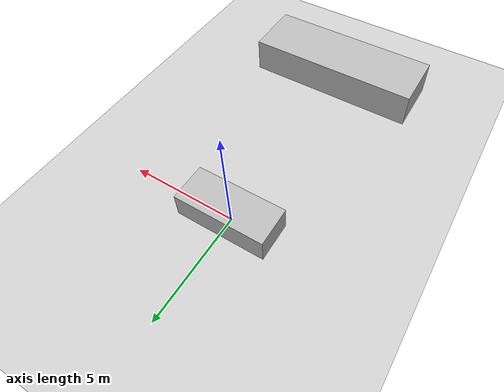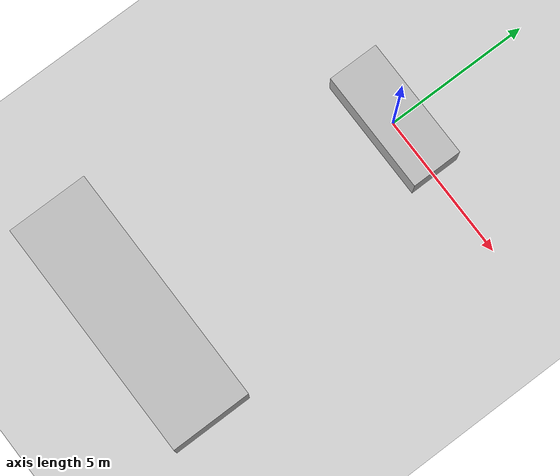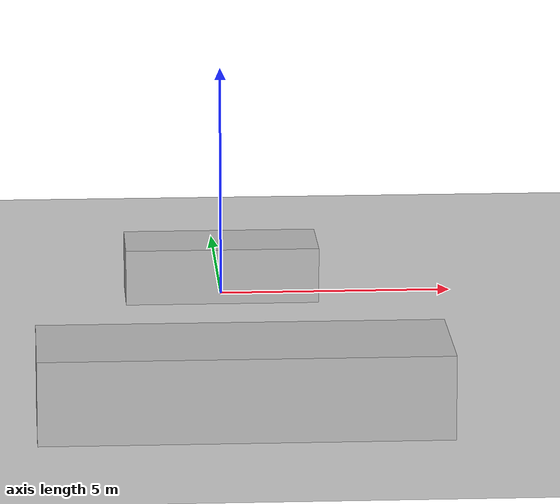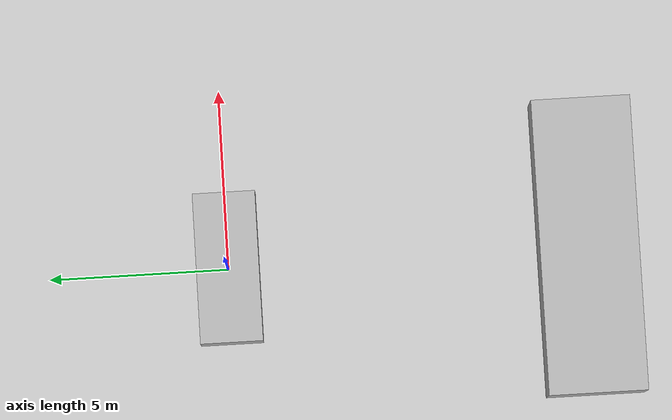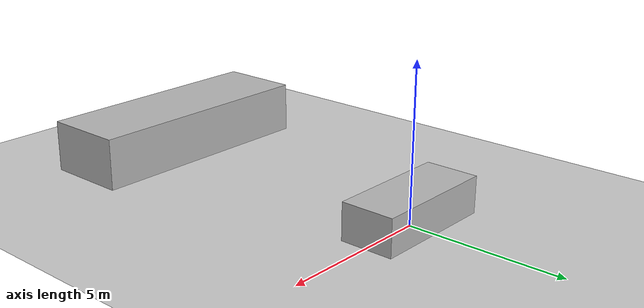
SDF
<?xml version="1.0"?>
<sdf version="1.4">
  <world name="animated_box_world">

    <!-- Ground Plane -->
    <include>
      <uri>model://ground_plane</uri>
    </include>

    <include>
      <uri>model://sun</uri>
    </include>

    <model name="box">
      <pose>0 0 0.5 0 0 0</pose>
      <link name="link">
        <collision name="collision">
          <geometry>
            <box>
              <size>4.172357674029369079 1.738894971252158861 1.369794373548019362</size>
            </box>
          </geometry>
        </collision>

        <visual name="visual">
          <geometry>
            <box>
              <size>4.172357674029369079 1.738894971252158861 1.369794373548019362</size>
            </box>
          </geometry>
        </visual>

      </link>

      <plugin name="push_animate" filename="libanimated_box.so"/>
    </model>

    <model name="box2">
      <pose>0 -10 0.5 0 0 0</pose>
      <link name="link">
        <collision name="collision">
          <geometry>
            <box>
              <size>8.172357674029369079 2.738894971252158861 2.369794373548019362</size>
            </box>
          </geometry>
        </collision>

        <visual name="visual">
          <geometry>
            <box>
              <size>8.172357674029369079 2.738894971252158861 2.369794373548019362</size>
            </box>
          </geometry>
        </visual>

      </link>

      <plugin name="push_animate" filename="libanimated_box.so"/>
    </model>
  </world>
</sdf>
